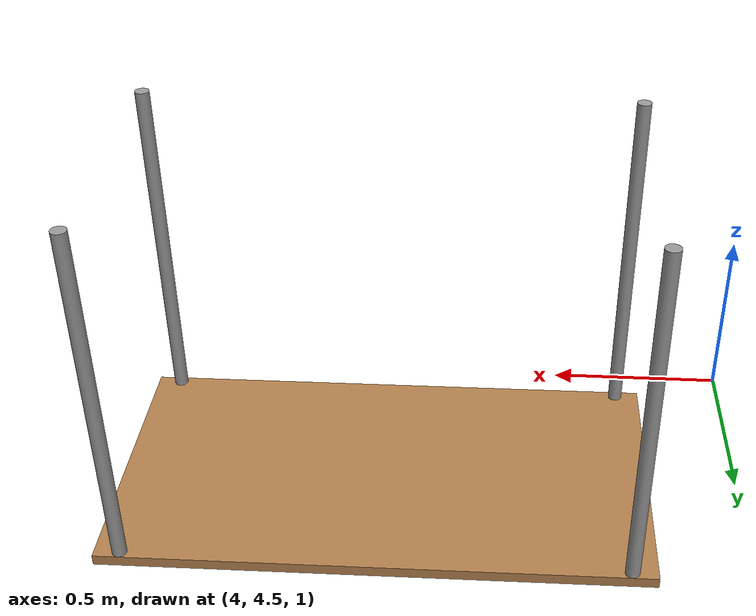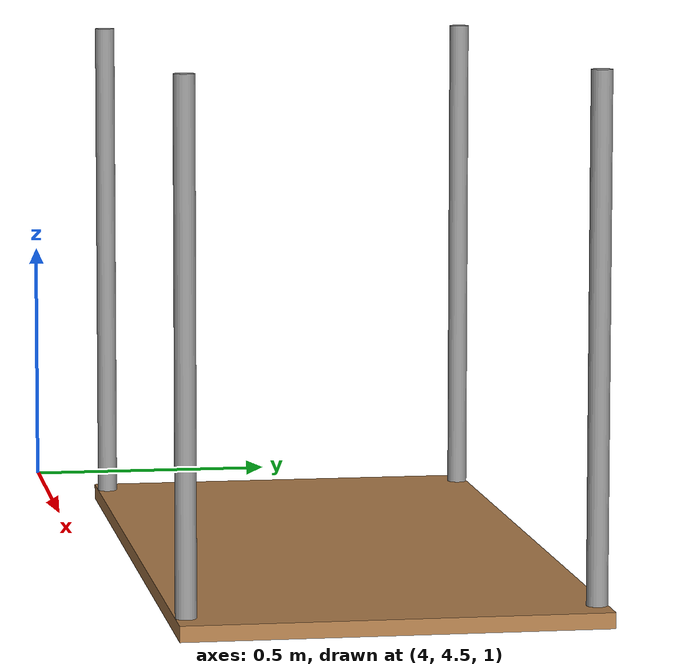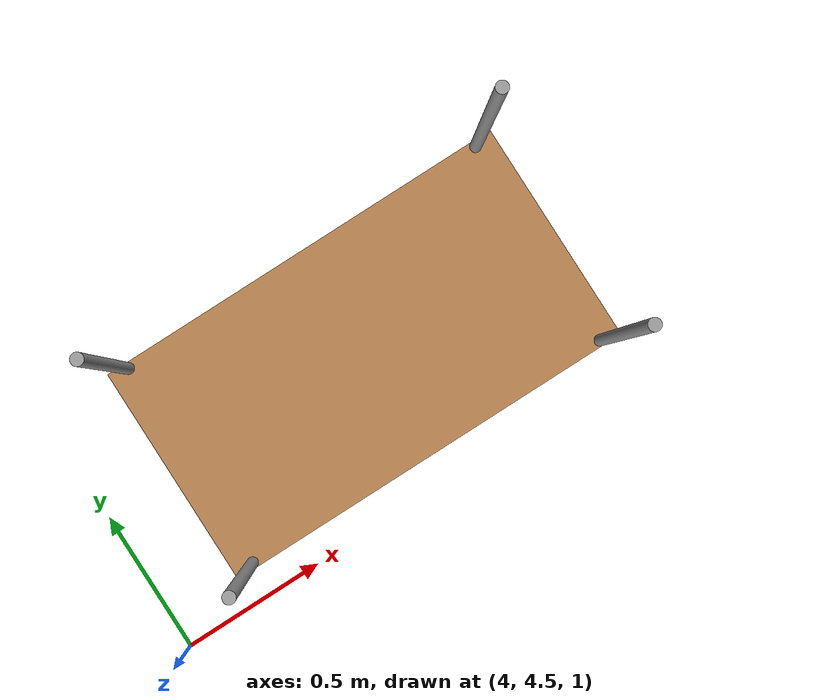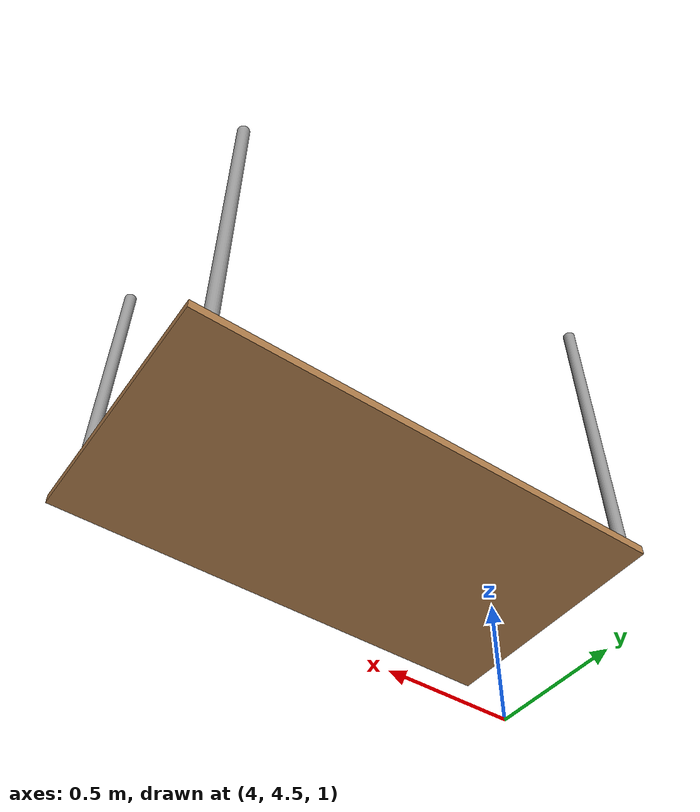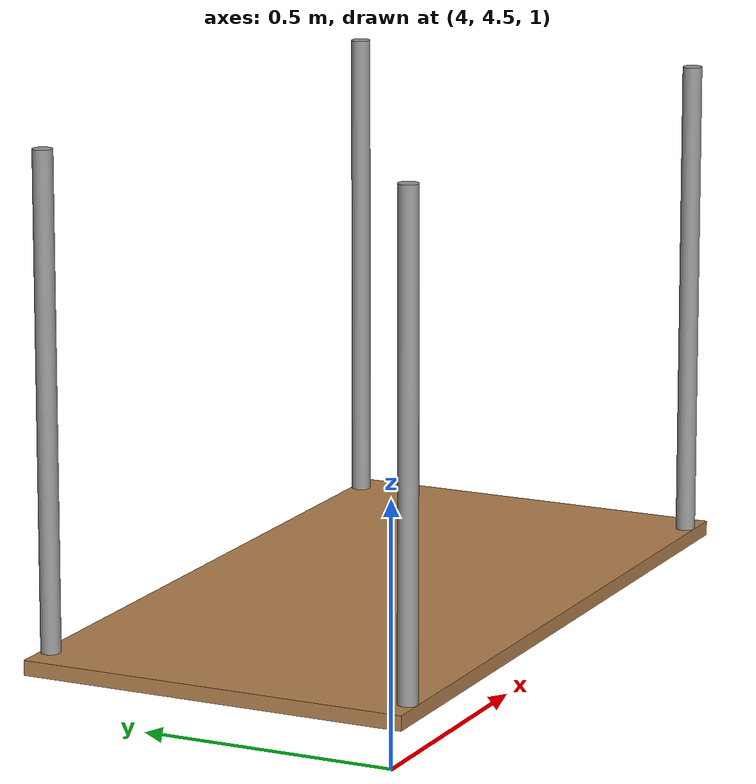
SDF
<?xml version="1.0" ?>
<sdf version="1.5">
  <model name="table">
    <static>true</static>
    <link name="link">
      <pose frame=''>5 5 1.0 0 -0 0</pose>
      <collision name="table_surface">
        <pose>0 0 0 0 0 0</pose>
        <geometry>
          <box>
            <size>1.5 0.8 0.03</size>
          </box>
        </geometry>
        <surface>
          <friction>
            <ode>
              <mu>0.6</mu>
              <mu2>0.6</mu2>
            </ode>
          </friction>
        </surface>
      </collision>
      <visual name="table_surface">
        <pose>0 0 0 0 0 0</pose>
        <geometry>
          <box>
            <size>1.5 0.8 0.03</size>
          </box>
        </geometry>
        <material>
          <script>
            <uri>file://media/materials/scripts/gazebo.material</uri>
            <name>Gazebo/Wood</name>
          </script>
        </material>
      </visual>
      <collision name="front_left_leg">
        <pose>0.68 0.38 0.5 0 0 0</pose>
        <geometry>
          <cylinder>
            <radius>0.02</radius>
            <length>1.0</length>
          </cylinder>
        </geometry>
      </collision>
      <visual name="front_left_leg">
        <pose>0.68 0.38 0.5 0 0 0</pose>
        <geometry>
          <cylinder>
            <radius>0.02</radius>
            <length>1.0</length>
          </cylinder>
        </geometry>
        <material>
          <script>
            <uri>file://media/materials/scripts/gazebo.material</uri>
            <name>Gazebo/Grey</name>
          </script>
        </material>
      </visual>
      <collision name="front_right_leg">
        <pose>0.68 -0.38 0.5 0 0 0</pose>
        <geometry>
          <cylinder>
            <radius>0.02</radius>
            <length>1.0</length>
          </cylinder>
        </geometry>
      </collision>
      <visual name="front_right_leg">
        <pose>0.68 -0.38 0.5 0 0 0</pose>
        <geometry>
          <cylinder>
            <radius>0.02</radius>
            <length>1.0</length>
          </cylinder>
        </geometry>
        <material>
          <script>
            <uri>file://media/materials/scripts/gazebo.material</uri>
            <name>Gazebo/Grey</name>
          </script>
        </material>
      </visual>
      <collision name="back_right_leg">
        <pose>-0.68 -0.38 0.5 0 0 0</pose>
        <geometry>
          <cylinder>
            <radius>0.02</radius>
            <length>1.0</length>
          </cylinder>
        </geometry>
      </collision>
      <visual name="back_right_leg">
        <pose>-0.68 -0.38 0.5 0 0 0</pose>
        <geometry>
          <cylinder>
            <radius>0.02</radius>
            <length>1.0</length>
          </cylinder>
        </geometry>
        <material>
          <script>
            <uri>file://media/materials/scripts/gazebo.material</uri>
            <name>Gazebo/Grey</name>
          </script>
        </material>
      </visual>
      <collision name="back_left_leg">
        <pose>-0.68 0.38 0.5 0 0 0</pose>
        <geometry>
          <cylinder>
            <radius>0.02</radius>
            <length>1.0</length>
          </cylinder>
        </geometry>
      </collision>
      <visual name="back_left_leg">
        <pose>-0.68 0.38 0.5 0 0 0</pose>
        <geometry>
          <cylinder>
            <radius>0.02</radius>
            <length>1.0</length>
          </cylinder>
        </geometry>
        <material>
          <script>
            <uri>file://media/materials/scripts/gazebo.material</uri>
            <name>Gazebo/Grey</name>
          </script>
        </material>
      </visual>
    </link>
  </model>
</sdf>
